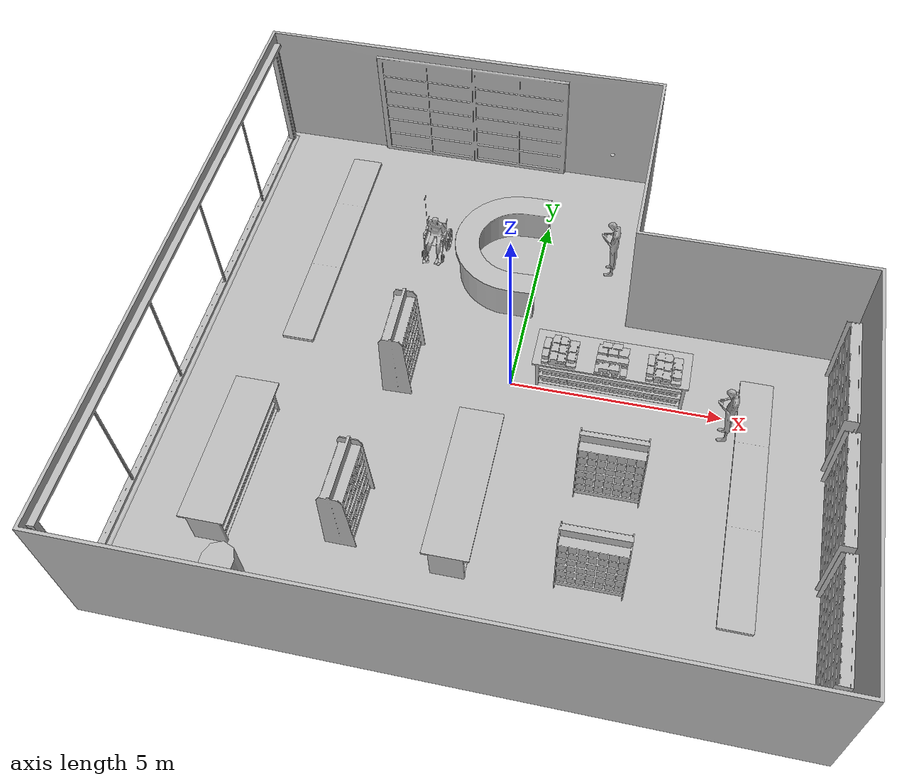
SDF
<sdf version="1.7">
 <world name="default">
  <gravity>0 0 -9.8</gravity>
  <magnetic_field>6e-06 2.3e-05 -4.2e-05</magnetic_field>
  <atmosphere type="adiabatic"/>
  <physics name="default_physics" default="0" type="ode">
   <max_step_size>0.001</max_step_size>
   <real_time_factor>1</real_time_factor>
   <real_time_update_rate>1000</real_time_update_rate>
  </physics>
  <scene>
   <ambient>0.4 0.4 0.4 1</ambient>
   <background>0.7 0.7 0.7 1</background>
   <shadows>1</shadows>
   <grid>0</grid>
   <origin_visual>0</origin_visual>
  </scene>
  <spherical_coordinates>
   <surface_model>EARTH_WGS84</surface_model>
   <latitude_deg>0</latitude_deg>
   <longitude_deg>0</longitude_deg>
   <elevation>0</elevation>
   <heading_deg>0</heading_deg>
  </spherical_coordinates>
  <model name="BookF_01_004">
   <frame name="aws_robomaker_retail_BookF_01::__model__" attached_to="aws_robomaker_retail_BookF_01::link">
    <pose relative_to="__model__">0 0 0 0 -0 0</pose>
   </frame>
   <link name="aws_robomaker_retail_BookF_01::link">
    <inertial>
     <mass>10</mass>
     <inertia>
      <ixx>0.583817</ixx>
      <ixy>0</ixy>
      <ixz>0</ixz>
      <iyy>0.502925</iyy>
      <iyz>0</iyz>
      <izz>0.99304</izz>
     </inertia>
    </inertial>
    <collision name="collision">
     <geometry>
      <mesh>
       <uri>file://models/aws_robomaker_retail_BookF_01/meshes/aws_BookF_01_collision.DAE</uri>
       <scale>1 1 1</scale>
      </mesh>
     </geometry>
    </collision>
    <visual name="visual">
     <geometry>
      <mesh><uri>file://models/aws_robomaker_retail_BookF_01/meshes/aws_BookF_01_visual.DAE</uri></mesh>
     </geometry>
     <meta><layer>1</layer></meta>
    </visual>
    <pose relative_to="aws_robomaker_retail_BookF_01::__model__">0 0 0 0 -0 0</pose>
   </link>
   <static>1</static>
   <pose>1.09789 0.358726 1.03816 8e-06 -0 1.58038</pose>
  </model>
  <model name="BookD_01_004">
   <frame name="aws_robomaker_retail_BookD_01::__model__" attached_to="aws_robomaker_retail_BookD_01::link">
    <pose relative_to="__model__">0 0 0 0 -0 0</pose>
   </frame>
   <link name="aws_robomaker_retail_BookD_01::link">
    <inertial><mass>0.5</mass></inertial>
    <collision name="collision">
     <geometry>
      <mesh>
       <uri>file://models/aws_robomaker_retail_BookD_01/meshes/aws_BookD_01_collision.DAE</uri>
       <scale>1 1 1</scale>
      </mesh>
     </geometry>
    </collision>
    <visual name="visual">
     <geometry>
      <mesh><uri>file://models/aws_robomaker_retail_BookD_01/meshes/aws_BookD_01_visual.DAE</uri></mesh>
     </geometry>
     <meta><layer>1</layer></meta>
    </visual>
    <pose relative_to="aws_robomaker_retail_BookD_01::__model__">0 0 0 0 -0 0</pose>
   </link>
   <static>1</static>
   <pose>2.30571 0.366231 1.03815 6e-06 -0 0.001712</pose>
  </model>
  <model name="BookF_01_005">
   <frame name="aws_robomaker_retail_BookF_01::__model__" attached_to="aws_robomaker_retail_BookF_01::link">
    <pose relative_to="__model__">0 0 0 0 -0 0</pose>
   </frame>
   <link name="aws_robomaker_retail_BookF_01::link">
    <inertial>
     <mass>10</mass>
     <inertia>
      <ixx>0.583817</ixx>
      <ixy>0</ixy>
      <ixz>0</ixz>
      <iyy>0.502925</iyy>
      <iyz>0</iyz>
      <izz>0.99304</izz>
     </inertia>
    </inertial>
    <collision name="collision">
     <geometry>
      <mesh>
       <uri>file://models/aws_robomaker_retail_BookF_01/meshes/aws_BookF_01_collision.DAE</uri>
       <scale>1 1 1</scale>
      </mesh>
     </geometry>
    </collision>
    <visual name="visual">
     <geometry>
      <mesh><uri>file://models/aws_robomaker_retail_BookF_01/meshes/aws_BookF_01_visual.DAE</uri></mesh>
     </geometry>
     <meta><layer>1</layer></meta>
    </visual>
    <pose relative_to="aws_robomaker_retail_BookF_01::__model__">0 0 0 0 -0 0</pose>
   </link>
   <static>1</static>
   <pose>3.50953 0.354293 1.03816 8e-06 -0 1.58038</pose>
  </model>
  <model name="BookshelfA_01_001">
   <frame name="aws_robomaker_retail_BookshelfA_01::__model__" attached_to="aws_robomaker_retail_BookshelfA_01::link">
    <pose relative_to="__model__">0 0 0 0 -0 0</pose>
   </frame>
   <link name="aws_robomaker_retail_BookshelfA_01::link">
    <inertial>
     <mass>50</mass>
     <inertia><ixx>27.7341</ixx><ixy>0</ixy><ixz>0</ixz><iyy>20.9361</iyy><iyz>0</iyz><izz>11.3596</izz></inertia>
    </inertial>
    <collision name="collision">
     <geometry>
      <mesh>
       <uri>file://models/aws_robomaker_retail_BookshelfA_01/meshes/aws_BookshelfA_01_collision.DAE</uri>
       <scale>1 1 1</scale>
      </mesh>
     </geometry>
    </collision>
    <visual name="visual">
     <geometry>
      <mesh><uri>file://models/aws_robomaker_retail_BookshelfA_01/meshes/aws_BookshelfA_01_visual.DAE</uri></mesh>
     </geometry>
     <meta><layer>1</layer></meta>
    </visual>
    <pose relative_to="aws_robomaker_retail_BookshelfA_01::__model__">0 0 0 0 -0 0</pose>
   </link>
   <static>1</static>
   <pose>2.67835 -2.33907 0.035303 -3.7e-05 -0.00349 1.58115</pose>
  </model>
  <model name="BookshelfA_01_002">
   <frame name="aws_robomaker_retail_BookshelfA_01::__model__" attached_to="aws_robomaker_retail_BookshelfA_01::link">
    <pose relative_to="__model__">0 0 0 0 -0 0</pose>
   </frame>
   <link name="aws_robomaker_retail_BookshelfA_01::link">
    <inertial>
     <mass>50</mass>
     <inertia><ixx>27.7341</ixx><ixy>0</ixy><ixz>0</ixz><iyy>20.9361</iyy><iyz>0</iyz><izz>11.3596</izz></inertia>
    </inertial>
    <collision name="collision">
     <geometry>
      <mesh>
       <uri>file://models/aws_robomaker_retail_BookshelfA_01/meshes/aws_BookshelfA_01_collision.DAE</uri>
       <scale>1 1 1</scale>
      </mesh>
     </geometry>
    </collision>
    <visual name="visual">
     <geometry>
      <mesh><uri>file://models/aws_robomaker_retail_BookshelfA_01/meshes/aws_BookshelfA_01_visual.DAE</uri></mesh>
     </geometry>
     <meta><layer>1</layer></meta>
    </visual>
    <pose relative_to="aws_robomaker_retail_BookshelfA_01::__model__">0 0 0 0 -0 0</pose>
   </link>
   <static>1</static>
   <pose>2.64114 -4.54839 0.003411 0 -0 1.5778</pose>
  </model>
  <model name="BookshelfA_01_003">
   <frame name="aws_robomaker_retail_BookshelfA_01::__model__" attached_to="aws_robomaker_retail_BookshelfA_01::link">
    <pose relative_to="__model__">0 0 0 0 -0 0</pose>
   </frame>
   <link name="aws_robomaker_retail_BookshelfA_01::link">
    <inertial>
     <mass>50</mass>
     <inertia><ixx>27.7341</ixx><ixy>0</ixy><ixz>0</ixz><iyy>20.9361</iyy><iyz>0</iyz><izz>11.3596</izz></inertia>
    </inertial>
    <collision name="collision">
     <geometry>
      <mesh>
       <uri>file://models/aws_robomaker_retail_BookshelfA_01/meshes/aws_BookshelfA_01_collision.DAE</uri>
       <scale>1 1 1</scale>
      </mesh>
     </geometry>
    </collision>
    <visual name="visual">
     <geometry>
      <mesh><uri>file://models/aws_robomaker_retail_BookshelfA_01/meshes/aws_BookshelfA_01_visual.DAE</uri></mesh>
     </geometry>
     <meta><layer>1</layer></meta>
    </visual>
    <pose relative_to="aws_robomaker_retail_BookshelfA_01::__model__">0 0 0 0 -0 0</pose>
   </link>
   <static>1</static>
   <pose>-2.60023 -0.050691 0.008224 0.001313 -0.001987 0.031824</pose>
  </model>
  <model name="BookshelfA_01_004">
   <frame name="aws_robomaker_retail_BookshelfA_01::__model__" attached_to="aws_robomaker_retail_BookshelfA_01::link">
    <pose relative_to="__model__">0 0 0 0 -0 0</pose>
   </frame>
   <link name="aws_robomaker_retail_BookshelfA_01::link">
    <inertial>
     <mass>50</mass>
     <inertia><ixx>27.7341</ixx><ixy>0</ixy><ixz>0</ixz><iyy>20.9361</iyy><iyz>0</iyz><izz>11.3596</izz></inertia>
    </inertial>
    <collision name="collision">
     <geometry>
      <mesh>
       <uri>file://models/aws_robomaker_retail_BookshelfA_01/meshes/aws_BookshelfA_01_collision.DAE</uri>
       <scale>1 1 1</scale>
      </mesh>
     </geometry>
    </collision>
    <visual name="visual">
     <geometry>
      <mesh><uri>file://models/aws_robomaker_retail_BookshelfA_01/meshes/aws_BookshelfA_01_visual.DAE</uri></mesh>
     </geometry>
     <meta><layer>1</layer></meta>
    </visual>
    <pose relative_to="aws_robomaker_retail_BookshelfA_01::__model__">0 0 0 0 -0 0</pose>
   </link>
   <static>1</static>
   <pose>-2.74467 -4.1037 0.003411 0 -0 0</pose>
  </model>
  <model name="BookshelfB_01_001">
   <frame name="aws_robomaker_retail_BookshelfB_01::__model__" attached_to="aws_robomaker_retail_BookshelfB_01::link">
    <pose relative_to="__model__">0 0 0 0 -0 0</pose>
   </frame>
   <link name="aws_robomaker_retail_BookshelfB_01::link">
    <inertial>
     <mass>50</mass>
     <inertia><ixx>19.8742</ixx><ixy>0</ixy><ixz>0</ixz><iyy>49.1263</iyy><iyz>0</iyz><izz>30.2231</izz></inertia>
    </inertial>
    <collision name="collision">
     <geometry>
      <mesh>
       <uri>file://models/aws_robomaker_retail_BookshelfB_01/meshes/aws_BookshelfB_01_collision.DAE</uri>
       <scale>1 1 1</scale>
      </mesh>
     </geometry>
    </collision>
    <visual name="visual">
     <geometry>
      <mesh><uri>file://models/aws_robomaker_retail_BookshelfB_01/meshes/aws_BookshelfB_01_visual.DAE</uri></mesh>
     </geometry>
     <meta><layer>1</layer></meta>
    </visual>
    <pose relative_to="aws_robomaker_retail_BookshelfB_01::__model__">0 0 0 0 -0 0</pose>
   </link>
   <static>1</static>
   <pose>-6.18898 -6.97871 -0.009624 0.003535 -5e-06 0.003649</pose>
  </model>
  <model name="BookshelfB_01_002">
   <frame name="aws_robomaker_retail_BookshelfB_01::__model__" attached_to="aws_robomaker_retail_BookshelfB_01::link">
    <pose relative_to="__model__">0 0 0 0 -0 0</pose>
   </frame>
   <link name="aws_robomaker_retail_BookshelfB_01::link">
    <inertial>
     <mass>50</mass>
     <inertia><ixx>19.8742</ixx><ixy>0</ixy><ixz>0</ixz><iyy>49.1263</iyy><iyz>0</iyz><izz>30.2231</izz></inertia>
    </inertial>
    <collision name="collision">
     <geometry>
      <mesh>
       <uri>file://models/aws_robomaker_retail_BookshelfB_01/meshes/aws_BookshelfB_01_collision.DAE</uri>
       <scale>1 1 1</scale>
      </mesh>
     </geometry>
    </collision>
    <visual name="visual">
     <geometry>
      <mesh><uri>file://models/aws_robomaker_retail_BookshelfB_01/meshes/aws_BookshelfB_01_visual.DAE</uri></mesh>
     </geometry>
     <meta><layer>1</layer></meta>
    </visual>
    <pose relative_to="aws_robomaker_retail_BookshelfB_01::__model__">0 0 0 0 -0 0</pose>
   </link>
   <static>1</static>
   <pose>-2.20941 -6.97146 0.017074 -0.000128 -0.000252 0.000364</pose>
  </model>
  <model name="BookshelfB_01_003">
   <frame name="aws_robomaker_retail_BookshelfB_01::__model__" attached_to="aws_robomaker_retail_BookshelfB_01::link">
    <pose relative_to="__model__">0 0 0 0 -0 0</pose>
   </frame>
   <link name="aws_robomaker_retail_BookshelfB_01::link">
    <inertial>
     <mass>50</mass>
     <inertia><ixx>19.8742</ixx><ixy>0</ixy><ixz>0</ixz><iyy>49.1263</iyy><iyz>0</iyz><izz>30.2231</izz></inertia>
    </inertial>
    <collision name="collision">
     <geometry>
      <mesh>
       <uri>file://models/aws_robomaker_retail_BookshelfB_01/meshes/aws_BookshelfB_01_collision.DAE</uri>
       <scale>1 1 1</scale>
      </mesh>
     </geometry>
    </collision>
    <visual name="visual">
     <geometry>
      <mesh><uri>file://models/aws_robomaker_retail_BookshelfB_01/meshes/aws_BookshelfB_01_visual.DAE</uri></mesh>
     </geometry>
     <meta><layer>1</layer></meta>
    </visual>
    <pose relative_to="aws_robomaker_retail_BookshelfB_01::__model__">0 0 0 0 -0 0</pose>
   </link>
   <static>1</static>
   <pose>0.522246 -6.9715 0.017947 -0.003292 0 0</pose>
  </model>
  <model name="BookshelfB_01_004">
   <frame name="aws_robomaker_retail_BookshelfB_01::__model__" attached_to="aws_robomaker_retail_BookshelfB_01::link">
    <pose relative_to="__model__">0 0 0 0 -0 0</pose>
   </frame>
   <link name="aws_robomaker_retail_BookshelfB_01::link">
    <inertial>
     <mass>50</mass>
     <inertia><ixx>19.8742</ixx><ixy>0</ixy><ixz>0</ixz><iyy>49.1263</iyy><iyz>0</iyz><izz>30.2231</izz></inertia>
    </inertial>
    <collision name="collision">
     <geometry>
      <mesh>
       <uri>file://models/aws_robomaker_retail_BookshelfB_01/meshes/aws_BookshelfB_01_collision.DAE</uri>
       <scale>1 1 1</scale>
      </mesh>
     </geometry>
    </collision>
    <visual name="visual">
     <geometry>
      <mesh><uri>file://models/aws_robomaker_retail_BookshelfB_01/meshes/aws_BookshelfB_01_visual.DAE</uri></mesh>
     </geometry>
     <meta><layer>1</layer></meta>
    </visual>
    <pose relative_to="aws_robomaker_retail_BookshelfB_01::__model__">0 0 0 0 -0 0</pose>
   </link>
   <static>1</static>
   <pose>3.29339 -6.96366 0.017383 8e-06 -2e-06 -0</pose>
  </model>
  <model name="BookshelfB_01_005">
   <frame name="aws_robomaker_retail_BookshelfB_01::__model__" attached_to="aws_robomaker_retail_BookshelfB_01::link">
    <pose relative_to="__model__">0 0 0 0 -0 0</pose>
   </frame>
   <link name="aws_robomaker_retail_BookshelfB_01::link">
    <inertial>
     <mass>50</mass>
     <inertia><ixx>19.8742</ixx><ixy>0</ixy><ixz>0</ixz><iyy>49.1263</iyy><iyz>0</iyz><izz>30.2231</izz></inertia>
    </inertial>
    <collision name="collision">
     <geometry>
      <mesh>
       <uri>file://models/aws_robomaker_retail_BookshelfB_01/meshes/aws_BookshelfB_01_collision.DAE</uri>
       <scale>1 1 1</scale>
      </mesh>
     </geometry>
    </collision>
    <visual name="visual">
     <geometry>
      <mesh><uri>file://models/aws_robomaker_retail_BookshelfB_01/meshes/aws_BookshelfB_01_visual.DAE</uri></mesh>
     </geometry>
     <meta><layer>1</layer></meta>
    </visual>
    <pose relative_to="aws_robomaker_retail_BookshelfB_01::__model__">0 0 0 0 -0 0</pose>
   </link>
   <static>1</static>
   <pose>6.08038 -6.98766 0.017409 0.000174 4e-06 0</pose>
  </model>
  <model name="BookshelfB_01_006">
   <frame name="aws_robomaker_retail_BookshelfB_01::__model__" attached_to="aws_robomaker_retail_BookshelfB_01::link">
    <pose relative_to="__model__">0 0 0 0 -0 0</pose>
   </frame>
   <link name="aws_robomaker_retail_BookshelfB_01::link">
    <inertial>
     <mass>50</mass>
     <inertia><ixx>19.8742</ixx><ixy>0</ixy><ixz>0</ixz><iyy>49.1263</iyy><iyz>0</iyz><izz>30.2231</izz></inertia>
    </inertial>
    <collision name="collision">
     <geometry>
      <mesh>
       <uri>file://models/aws_robomaker_retail_BookshelfB_01/meshes/aws_BookshelfB_01_collision.DAE</uri>
       <scale>1 1 1</scale>
      </mesh>
     </geometry>
    </collision>
    <visual name="visual">
     <geometry>
      <mesh><uri>file://models/aws_robomaker_retail_BookshelfB_01/meshes/aws_BookshelfB_01_visual.DAE</uri></mesh>
     </geometry>
     <meta><layer>1</layer></meta>
    </visual>
    <pose relative_to="aws_robomaker_retail_BookshelfB_01::__model__">0 0 0 0 -0 0</pose>
   </link>
   <static>1</static>
   <pose>7.47833 -5.2983 0.017443 -0.001974 -0.000211 1.55406</pose>
  </model>
  <model name="BookshelfB_01_007">
   <frame name="aws_robomaker_retail_BookshelfB_01::__model__" attached_to="aws_robomaker_retail_BookshelfB_01::link">
    <pose relative_to="__model__">0 0 0 0 -0 0</pose>
   </frame>
   <link name="aws_robomaker_retail_BookshelfB_01::link">
    <inertial>
     <mass>50</mass>
     <inertia><ixx>19.8742</ixx><ixy>0</ixy><ixz>0</ixz><iyy>49.1263</iyy><iyz>0</iyz><izz>30.2231</izz></inertia>
    </inertial>
    <collision name="collision">
     <geometry>
      <mesh>
       <uri>file://models/aws_robomaker_retail_BookshelfB_01/meshes/aws_BookshelfB_01_collision.DAE</uri>
       <scale>1 1 1</scale>
      </mesh>
     </geometry>
    </collision>
    <visual name="visual">
     <geometry>
      <mesh><uri>file://models/aws_robomaker_retail_BookshelfB_01/meshes/aws_BookshelfB_01_visual.DAE</uri></mesh>
     </geometry>
     <meta><layer>1</layer></meta>
    </visual>
    <pose relative_to="aws_robomaker_retail_BookshelfB_01::__model__">0 0 0 0 -0 0</pose>
   </link>
   <static>1</static>
   <pose>7.47833 -2.51065 0.017402 1e-05 -1.3e-05 1.56207</pose>
  </model>
  <model name="BookshelfB_01_008">
   <frame name="aws_robomaker_retail_BookshelfB_01::__model__" attached_to="aws_robomaker_retail_BookshelfB_01::link">
    <pose relative_to="__model__">0 0 0 0 -0 0</pose>
   </frame>
   <link name="aws_robomaker_retail_BookshelfB_01::link">
    <inertial>
     <mass>50</mass>
     <inertia><ixx>19.8742</ixx><ixy>0</ixy><ixz>0</ixz><iyy>49.1263</iyy><iyz>0</iyz><izz>30.2231</izz></inertia>
    </inertial>
    <collision name="collision">
     <geometry>
      <mesh>
       <uri>file://models/aws_robomaker_retail_BookshelfB_01/meshes/aws_BookshelfB_01_collision.DAE</uri>
       <scale>1 1 1</scale>
      </mesh>
     </geometry>
    </collision>
    <visual name="visual">
     <geometry>
      <mesh><uri>file://models/aws_robomaker_retail_BookshelfB_01/meshes/aws_BookshelfB_01_visual.DAE</uri></mesh>
     </geometry>
     <meta><layer>1</layer></meta>
    </visual>
    <pose relative_to="aws_robomaker_retail_BookshelfB_01::__model__">0 0 0 0 -0 0</pose>
   </link>
   <static>1</static>
   <pose>7.47833 0.402539 0.017181 3e-06 -0.000156 1.5708</pose>
  </model>
  <model name="ColumnB_01_002">
   <frame name="aws_robomaker_retail_ColumnB_01::__model__" attached_to="aws_robomaker_retail_ColumnB_01::link">
    <pose relative_to="__model__">0 0 0 0 -0 0</pose>
   </frame>
   <link name="aws_robomaker_retail_ColumnB_01::link">
    <inertial>
     <mass>50</mass>
     <inertia><ixx>44.5597</ixx><ixy>0</ixy><ixz>0</ixz><iyy>44.5597</iyy><iyz>0</iyz><izz>1.87942</izz></inertia>
    </inertial>
    <collision name="collision">
     <geometry>
      <mesh>
       <uri>file://models/aws_robomaker_retail_ColumnB_01/meshes/aws_ColumnB_01_collision.DAE</uri>
       <scale>1 1 1</scale>
      </mesh>
     </geometry>
    </collision>
    <visual name="visual">
     <geometry>
      <mesh><uri>file://models/aws_robomaker_retail_ColumnB_01/meshes/aws_ColumnB_01_visual.DAE</uri></mesh>
     </geometry>
     <meta><layer>1</layer></meta>
    </visual>
    <pose relative_to="aws_robomaker_retail_ColumnB_01::__model__">0 0 0 0 -0 0</pose>
   </link>
   <static>1</static>
   <pose>-4.07623 -6.86071 0.017511 0.001895 -0.000628 -0.003755</pose>
  </model>
  <model name="InfoDesk_01_001">
   <frame name="aws_robomaker_retail_InfoDesk_01::__model__" attached_to="aws_robomaker_retail_InfoDesk_01::link">
    <pose relative_to="__model__">0 0 0 0 -0 0</pose>
   </frame>
   <link name="aws_robomaker_retail_InfoDesk_01::link">
    <inertial>
     <mass>50</mass>
     <inertia><ixx>47.8386</ixx><ixy>0</ixy><ixz>0</ixz><iyy>25.3705</iyy><iyz>0</iyz><izz>63.5798</izz></inertia>
    </inertial>
    <collision name="collision">
     <geometry>
      <mesh>
       <uri>file://models/aws_robomaker_retail_InfoDesk_01/meshes/aws_InfoDesk_01_collision.DAE</uri>
       <scale>1 1 1</scale>
      </mesh>
     </geometry>
    </collision>
    <visual name="visual">
     <geometry>
      <mesh><uri>file://models/aws_robomaker_retail_InfoDesk_01/meshes/aws_InfoDesk_01_visual.DAE</uri></mesh>
     </geometry>
     <meta><layer>1</layer></meta>
    </visual>
    <pose relative_to="aws_robomaker_retail_InfoDesk_01::__model__">0 0 0 0 -0 0</pose>
   </link>
   <static>1</static>
   <pose>-1.01581 3.45371 0.011585 -0.006445 0.005476 0.030427</pose>
  </model>
  <model name="DeskB_01_001">
   <frame name="aws_robomaker_retail_DeskB_01::__model__" attached_to="aws_robomaker_retail_DeskB_01::link">
    <pose relative_to="__model__">0 0 0 0 -0 0</pose>
   </frame>
   <link name="aws_robomaker_retail_DeskB_01::link">
    <inertial>
     <mass>50</mass>
     <inertia><ixx>154.884</ixx><ixy>0</ixy><ixz>0</ixz><iyy>7.48424</iyy><iyz>0</iyz><izz>152.099</izz></inertia>
    </inertial>
    <collision name="collision">
     <geometry>
      <mesh>
       <uri>file://models/aws_robomaker_retail_DeskB_01/meshes/aws_DeskB_01_collision.DAE</uri>
       <scale>1 1 1</scale>
      </mesh>
     </geometry>
    </collision>
    <visual name="visual">
     <geometry>
      <mesh><uri>file://models/aws_robomaker_retail_DeskB_01/meshes/aws_DeskB_01_visual.DAE</uri></mesh>
     </geometry>
     <meta><layer>1</layer></meta>
    </visual>
    <pose relative_to="aws_robomaker_retail_DeskB_01::__model__">0 0 0 0 -0 0</pose>
   </link>
   <static>1</static>
   <pose>5.62294 -2.47542 -0.181282 0 -0 0</pose>
  </model>
  <model name="DeskB_01_002">
   <frame name="aws_robomaker_retail_DeskB_01::__model__" attached_to="aws_robomaker_retail_DeskB_01::link">
    <pose relative_to="__model__">0 0 0 0 -0 0</pose>
   </frame>
   <link name="aws_robomaker_retail_DeskB_01::link">
    <inertial>
     <mass>50</mass>
     <inertia><ixx>154.884</ixx><ixy>0</ixy><ixz>0</ixz><iyy>7.48424</iyy><iyz>0</iyz><izz>152.099</izz></inertia>
    </inertial>
    <collision name="collision">
     <geometry>
      <mesh>
       <uri>file://models/aws_robomaker_retail_DeskB_01/meshes/aws_DeskB_01_collision.DAE</uri>
       <scale>1 1 1</scale>
      </mesh>
     </geometry>
    </collision>
    <visual name="visual">
     <geometry>
      <mesh><uri>file://models/aws_robomaker_retail_DeskB_01/meshes/aws_DeskB_01_visual.DAE</uri></mesh>
     </geometry>
     <meta><layer>1</layer></meta>
    </visual>
    <pose relative_to="aws_robomaker_retail_DeskB_01::__model__">0 0 0 0 -0 0</pose>
   </link>
   <static>1</static>
   <pose>-5.04157 2.63844 -0.181282 0 -0 0</pose>
  </model>
  <model name="DeskA_01_003">
   <frame name="aws_robomaker_retail_DeskA_01::__model__" attached_to="aws_robomaker_retail_DeskA_01::link">
    <pose relative_to="__model__">0 0 0 0 -0 0</pose>
   </frame>
   <link name="aws_robomaker_retail_DeskA_01::link">
    <inertial>
     <mass>20</mass>
     <inertia><ixx>3.49717</ixx><ixy>0</ixy><ixz>0</ixz><iyy>23.5599</iyy><iyz>0</iyz><izz>23.5702</izz></inertia>
    </inertial>
    <collision name="collision">
     <geometry>
      <mesh>
       <uri>file://models/aws_robomaker_retail_DeskA_01/meshes/aws_DeskA_01_collision.DAE</uri>
       <scale>1 1 1</scale>
      </mesh>
     </geometry>
    </collision>
    <visual name="visual">
     <geometry>
      <mesh><uri>file://models/aws_robomaker_retail_DeskA_01/meshes/aws_DeskA_01_visual.DAE</uri></mesh>
     </geometry>
     <meta><layer>1</layer></meta>
    </visual>
    <pose relative_to="aws_robomaker_retail_DeskA_01::__model__">0 0 0 0 -0 0</pose>
   </link>
   <static>1</static>
   <pose>-5.52214 -3.53677 -0.003011 0.001948 0.001361 -1.56957</pose>
  </model>
  <model name="DeskA_01_004">
   <frame name="aws_robomaker_retail_DeskA_01::__model__" attached_to="aws_robomaker_retail_DeskA_01::link">
    <pose relative_to="__model__">0 0 0 0 -0 0</pose>
   </frame>
   <link name="aws_robomaker_retail_DeskA_01::link">
    <inertial>
     <mass>20</mass>
     <inertia><ixx>3.49717</ixx><ixy>0</ixy><ixz>0</ixz><iyy>23.5599</iyy><iyz>0</iyz><izz>23.5702</izz></inertia>
    </inertial>
    <collision name="collision">
     <geometry>
      <mesh>
       <uri>file://models/aws_robomaker_retail_DeskA_01/meshes/aws_DeskA_01_collision.DAE</uri>
       <scale>1 1 1</scale>
      </mesh>
     </geometry>
    </collision>
    <visual name="visual">
     <geometry>
      <mesh><uri>file://models/aws_robomaker_retail_DeskA_01/meshes/aws_DeskA_01_visual.DAE</uri></mesh>
     </geometry>
     <meta><layer>1</layer></meta>
    </visual>
    <pose relative_to="aws_robomaker_retail_DeskA_01::__model__">0 0 0 0 -0 0</pose>
   </link>
   <static>1</static>
   <pose>-0.33345 -3.33729 0.014866 0 0 -1.5661</pose>
  </model>
  <model name="DeskA_01_005">
   <frame name="aws_robomaker_retail_DeskA_01::__model__" attached_to="aws_robomaker_retail_DeskA_01::link">
    <pose relative_to="__model__">0 0 0 0 -0 0</pose>
   </frame>
   <link name="aws_robomaker_retail_DeskA_01::link">
    <inertial>
     <mass>20</mass>
     <inertia><ixx>3.49717</ixx><ixy>0</ixy><ixz>0</ixz><iyy>23.5599</iyy><iyz>0</iyz><izz>23.5702</izz></inertia>
    </inertial>
    <collision name="collision">
     <geometry>
      <mesh>
       <uri>file://models/aws_robomaker_retail_DeskA_01/meshes/aws_DeskA_01_collision.DAE</uri>
       <scale>1 1 1</scale>
      </mesh>
     </geometry>
    </collision>
    <visual name="visual">
     <geometry>
      <mesh><uri>file://models/aws_robomaker_retail_DeskA_01/meshes/aws_DeskA_01_visual.DAE</uri></mesh>
     </geometry>
     <meta><layer>1</layer></meta>
    </visual>
    <pose relative_to="aws_robomaker_retail_DeskA_01::__model__">0 0 0 0 -0 0</pose>
   </link>
   <static>1</static>
   <pose>2.29783 0.459339 0.014883 -2e-06 0.003451 2.4e-05</pose>
  </model>
  <model name="DoorB_01_001">
   <frame name="aws_robomaker_retail_DoorB_01::__model__" attached_to="aws_robomaker_retail_DoorB_01::link">
    <pose relative_to="__model__">0 0 0 0 -0 0</pose>
   </frame>
   <link name="aws_robomaker_retail_DoorB_01::link">
    <inertial>
     <mass>50</mass>
     <inertia><ixx>44.5597</ixx><ixy>0</ixy><ixz>0</ixz><iyy>151.699</iyy><iyz>0</iyz><izz>107.806</izz></inertia>
    </inertial>
    <collision name="collision">
     <geometry>
      <mesh>
       <uri>file://models/aws_robomaker_retail_DoorB_01/meshes/aws_DoorB_01_collision.DAE</uri>
       <scale>1 1 1</scale>
      </mesh>
     </geometry>
    </collision>
    <visual name="visual">
     <geometry>
      <mesh><uri>file://models/aws_robomaker_retail_DoorB_01/meshes/aws_DoorB_01_visual.DAE</uri></mesh>
     </geometry>
     <meta><layer>2</layer></meta>
    </visual>
    <pose relative_to="aws_robomaker_retail_DoorB_01::__model__">0 0 0 0 -0 0</pose>
   </link>
   <static>1</static>
   <pose>-2.49246 7.21937 -0.035203 0 -0 0</pose>
  </model>
  <model name="RetailShopFloor_01_001">
   <frame name="aws_robomaker_retail_RetailShopFloor_01::__model__" attached_to="aws_robomaker_retail_RetailShopFloor_01::link">
    <pose relative_to="__model__">0 0 0 0 -0 0</pose>
   </frame>
   <link name="aws_robomaker_retail_RetailShopFloor_01::link">
    <inertial><mass>100</mass></inertial>
    <collision name="collision">
     <geometry>
      <mesh>
       <uri>file://models/aws_robomaker_retail_RetailShopFloor_01/meshes/aws_RetailShopFloor_01_collision.DAE</uri>
       <scale>1 1 1</scale>
      </mesh>
     </geometry>
     <surface><friction><ode><mu>100</mu><mu2>50</mu2></ode></friction></surface>
    </collision>
    <visual name="visual">
     <geometry>
      <mesh>
       <uri>file://models/aws_robomaker_retail_RetailShopFloor_01/meshes/aws_RetailShopFloor_01_visual.DAE</uri>
      </mesh>
     </geometry>
     <meta><layer>1</layer></meta>
    </visual>
    <pose relative_to="aws_robomaker_retail_RetailShopFloor_01::__model__">0 0 0 0 -0 0</pose>
   </link>
   <static>1</static>
   <pose>-0.032416 -0.007194 -0.276618 0 -0 0</pose>
  </model>
  <model name="Horologe_01_001">
   <frame name="aws_robomaker_retail_Horologe_01::__model__" attached_to="aws_robomaker_retail_Horologe_01::link">
    <pose relative_to="__model__">0 0 0 0 -0 0</pose>
   </frame>
   <link name="aws_robomaker_retail_Horologe_01::link">
    <inertial><mass>1</mass></inertial>
    <collision name="collision">
     <geometry>
      <mesh>
       <uri>file://models/aws_robomaker_retail_Horologe_01/meshes/aws_Horologe_01_collision.DAE</uri>
       <scale>1 1 1</scale>
      </mesh>
     </geometry>
    </collision>
    <visual name="visual">
     <geometry>
      <mesh><uri>file://models/aws_robomaker_retail_Horologe_01/meshes/aws_Horologe_01_visual.DAE</uri></mesh>
     </geometry>
     <meta><layer>2</layer></meta>
    </visual>
    <pose relative_to="aws_robomaker_retail_Horologe_01::__model__">0 0 0 0 -0 0</pose>
   </link>
   <static>1</static>
   <pose>2.40512 3.02571 2.52519 0 0 -1.56558</pose>
  </model>
  <model name="RetailShopWall_01_001">
   <frame name="aws_robomaker_retail_RetailShopWall_01::__model__" attached_to="aws_robomaker_retail_RetailShopWall_01::link">
    <pose relative_to="__model__">0 0 0 0 -0 0</pose>
   </frame>
   <link name="aws_robomaker_retail_RetailShopWall_01::link">
    <inertial><mass>1</mass></inertial>
    <collision name="collision">
     <geometry>
      <mesh>
       <uri>file://models/aws_robomaker_retail_RetailShopWall_01/meshes/aws_RetailShopWall_01_collision.DAE</uri>
       <scale>1 1 1</scale>
      </mesh>
     </geometry>
    </collision>
    <visual name="visual">
     <geometry>
      <mesh>
       <uri>file://models/aws_robomaker_retail_RetailShopWall_01/meshes/aws_RetailShopWall_01_visual.DAE</uri>
      </mesh>
     </geometry>
     <meta><layer>2</layer></meta>
    </visual>
    <pose relative_to="aws_robomaker_retail_RetailShopWall_01::__model__">0 0 0 0 -0 0</pose>
   </link>
   <static>1</static>
   <pose>0 0 -0.281282 0 -0 0</pose>
  </model>
  <model name="Spotlight_01_001">
   <frame name="aws_robomaker_retail_Spotlight_01::__model__" attached_to="aws_robomaker_retail_Spotlight_01::link">
    <pose relative_to="__model__">0 0 0 0 -0 0</pose>
   </frame>
   <link name="aws_robomaker_retail_Spotlight_01::link">
    <inertial><mass>1</mass></inertial>
    <collision name="collision">
     <geometry>
      <mesh>
       <uri>file://models/aws_robomaker_retail_Spotlight_01/meshes/aws_Spotlight_01_collision.DAE</uri>
       <scale>1 1 1</scale>
      </mesh>
     </geometry>
    </collision>
    <visual name="visual">
     <geometry>
      <mesh><uri>file://models/aws_robomaker_retail_Spotlight_01/meshes/aws_Spotlight_01_visual.DAE</uri></mesh>
     </geometry>
     <meta><layer>3</layer></meta>
    </visual>
    <pose relative_to="aws_robomaker_retail_Spotlight_01::__model__">0 0 0 0 -0 0</pose>
   </link>
   <static>1</static>
   <pose>1.4932 4.69237 3.30266 0 -0 0</pose>
  </model>
  <model name="ShopWindow_01_001">
   <frame name="aws_robomaker_retail_ShopWindow_01::__model__" attached_to="aws_robomaker_retail_ShopWindow_01::link">
    <pose relative_to="__model__">0 0 0 0 -0 0</pose>
   </frame>
   <link name="aws_robomaker_retail_ShopWindow_01::link">
    <inertial><mass>1</mass></inertial>
    <collision name="collision">
     <geometry>
      <mesh>
       <uri>file://models/aws_robomaker_retail_ShopWindow_01/meshes/aws_ShopWindow_01_collision.DAE</uri>
       <scale>1 1 1</scale>
      </mesh>
     </geometry>
    </collision>
    <visual name="visual">
     <geometry>
      <mesh><uri>file://models/aws_robomaker_retail_ShopWindow_01/meshes/aws_ShopWindow_01_visual.DAE</uri></mesh>
     </geometry>
    </visual>
    <pose relative_to="aws_robomaker_retail_ShopWindow_01::__model__">0 0 0 0 -0 0</pose>
   </link>
   <static>1</static>
   <pose>-7.73816 0.01596 -0.180092 0 -0 0</pose>
  </model>
  <light name="RetailShop_CeilingLight_001" type="point">
   <pose>2.77442 -3.62815 3.17847 0 -0 0</pose>
   <diffuse>0.5 0.5 0.5 1</diffuse>
   <specular>0.1 0.1 0.1 1</specular>
   <attenuation>
    <range>20</range>
    <constant>0.32</constant>
    <linear>0.01</linear>
    <quadratic>0.03</quadratic>
   </attenuation>
   <cast_shadows>0</cast_shadows>
   <direction>0 0 -1</direction>
   <spot><inner_angle>0</inner_angle><outer_angle>0</outer_angle><falloff>0</falloff></spot>
  </light>
  <light name="RetailShop_CeilingLight_002" type="point">
   <pose>5.38399 -5.38371 3.17847 0 -0 0</pose>
   <diffuse>0.5 0.5 0.5 1</diffuse>
   <specular>0.1 0.1 0.1 1</specular>
   <attenuation>
    <range>20</range>
    <constant>0.32</constant>
    <linear>0.01</linear>
    <quadratic>0.03</quadratic>
   </attenuation>
   <cast_shadows>0</cast_shadows>
   <direction>0 0 -1</direction>
   <spot><inner_angle>0</inner_angle><outer_angle>0</outer_angle><falloff>0</falloff></spot>
  </light>
  <light name="RetailShop_CeilingLight_003" type="point">
   <pose>5.38399 0.04192 3.17847 0 -0 0</pose>
   <diffuse>0.5 0.5 0.5 1</diffuse>
   <specular>0.1 0.1 0.1 1</specular>
   <attenuation>
    <range>20</range>
    <constant>0.32</constant>
    <linear>0.01</linear>
    <quadratic>0.03</quadratic>
   </attenuation>
   <cast_shadows>0</cast_shadows>
   <direction>0 0 -1</direction>
   <spot><inner_angle>0</inner_angle><outer_angle>0</outer_angle><falloff>0</falloff></spot>
  </light>
  <light name="RetailShop_CeilingLight_004" type="point">
   <pose>-3.21067 -5.38371 3.17847 0 -0 0</pose>
   <diffuse>0.5 0.5 0.5 1</diffuse>
   <specular>0.1 0.1 0.1 1</specular>
   <attenuation>
    <range>20</range>
    <constant>0.32</constant>
    <linear>0.01</linear>
    <quadratic>0.03</quadratic>
   </attenuation>
   <cast_shadows>0</cast_shadows>
   <direction>0 0 -1</direction>
   <spot><inner_angle>0</inner_angle><outer_angle>0</outer_angle><falloff>0</falloff></spot>
  </light>
  <light name="RetailShop_CeilingLight_005" type="point">
   <pose>-3.271 2.68593 3.17847 0 -0 0</pose>
   <diffuse>0.5 0.5 0.5 1</diffuse>
   <specular>0.1 0.1 0.1 1</specular>
   <attenuation>
    <range>20</range>
    <constant>0.32</constant>
    <linear>0.01</linear>
    <quadratic>0.03</quadratic>
   </attenuation>
   <cast_shadows>0</cast_shadows>
   <direction>0 0 -1</direction>
   <spot><inner_angle>0</inner_angle><outer_angle>0</outer_angle><falloff>0</falloff></spot>
  </light>
  <light name="RetailShop_CeilingLight_006" type="point">
   <pose>1.4932 4.69237 3.17847 0 -0 0</pose>
   <diffuse>0.5 0.5 0.5 1</diffuse>
   <specular>0.1 0.1 0.1 1</specular>
   <attenuation>
    <range>20</range>
    <constant>0.32</constant>
    <linear>0.01</linear>
    <quadratic>0.03</quadratic>
   </attenuation>
   <cast_shadows>0</cast_shadows>
   <direction>0 0 -1</direction>
   <spot><inner_angle>0</inner_angle><outer_angle>0</outer_angle><falloff>0</falloff></spot>
  </light>
  <model name="MaleVisitorOnPhone">
   <static>1</static>
   <link name="body">
    <visual name="visual">
     <geometry><mesh><uri>model://MaleVisitorOnPhone/meshes/MaleVisitorStatic.obj</uri></mesh></geometry>
    </visual>
    <collision name="collision">
     <geometry><mesh><uri>model://MaleVisitorOnPhone/meshes/MaleVisitorStatic_Col.obj</uri></mesh></geometry>
    </collision>
   </link>
   <pose>5.11841 -0.432137 0 0 0 -3.09273</pose>
  </model>
  <model name="PatientWheelChair">
   <static>1</static>
   <link name="body">
    <visual name="visual">
     <geometry><mesh><uri>model://PatientWheelChair/meshes/PatientWheelChair.obj</uri></mesh></geometry>
    </visual>
    <collision name="collision">
     <geometry><mesh><uri>model://PatientWheelChair/meshes/PatientWheelChair_Col.obj</uri></mesh></geometry>
    </collision>
   </link>
   <pose>-2.72328 3.60913 0 0 -0 0</pose>
  </model>
  <model name="MaleVisitorOnPhone_0">
   <static>1</static>
   <link name="body">
    <visual name="visual">
     <geometry><mesh><uri>model://MaleVisitorOnPhone/meshes/MaleVisitorStatic.obj</uri></mesh></geometry>
    </visual>
    <collision name="collision">
     <geometry><mesh><uri>model://MaleVisitorOnPhone/meshes/MaleVisitorStatic_Col.obj</uri></mesh></geometry>
    </collision>
   </link>
   <pose>1.84196 3.9068 0 0 0 -3.131</pose>
  </model>
 </world>
</sdf>
